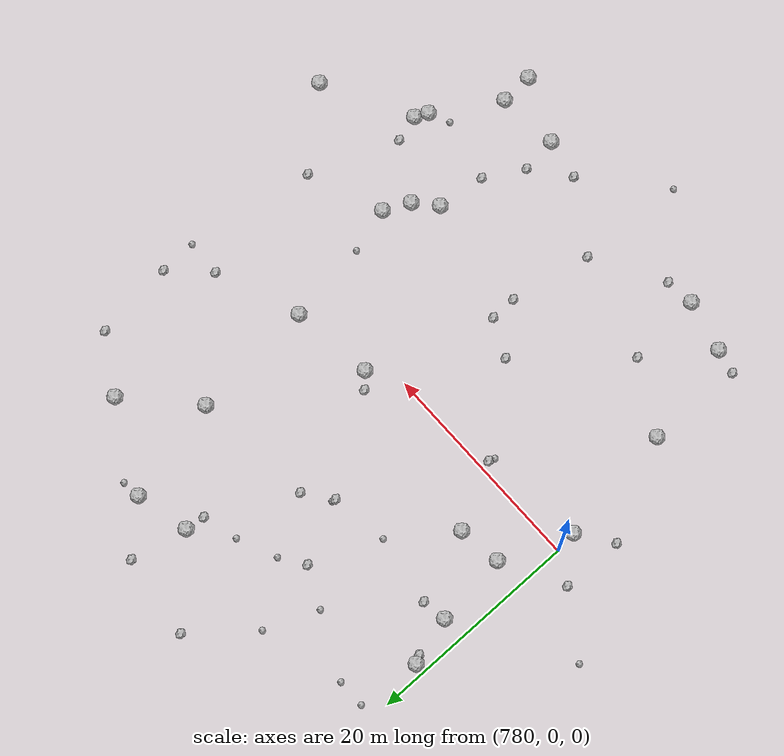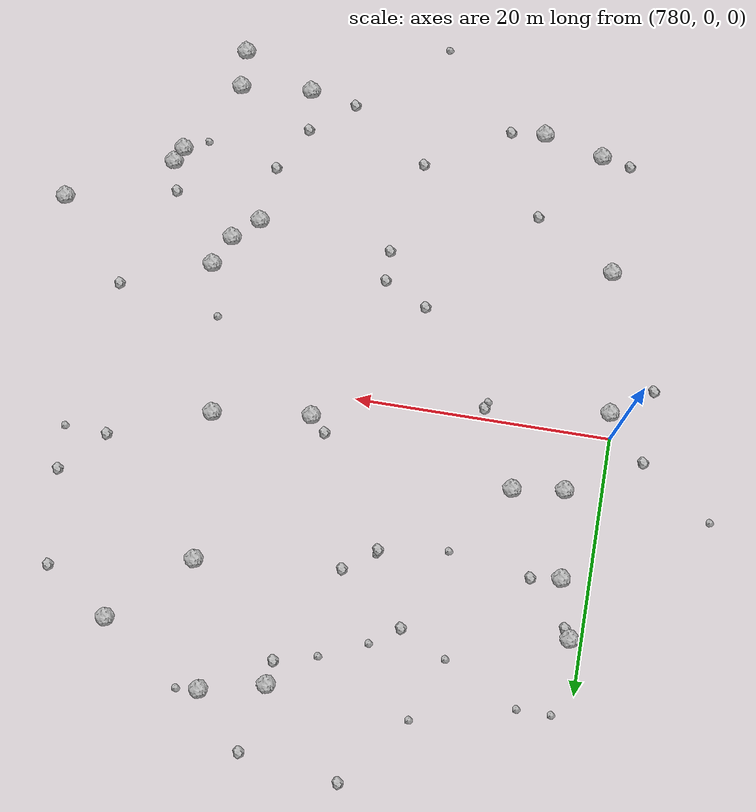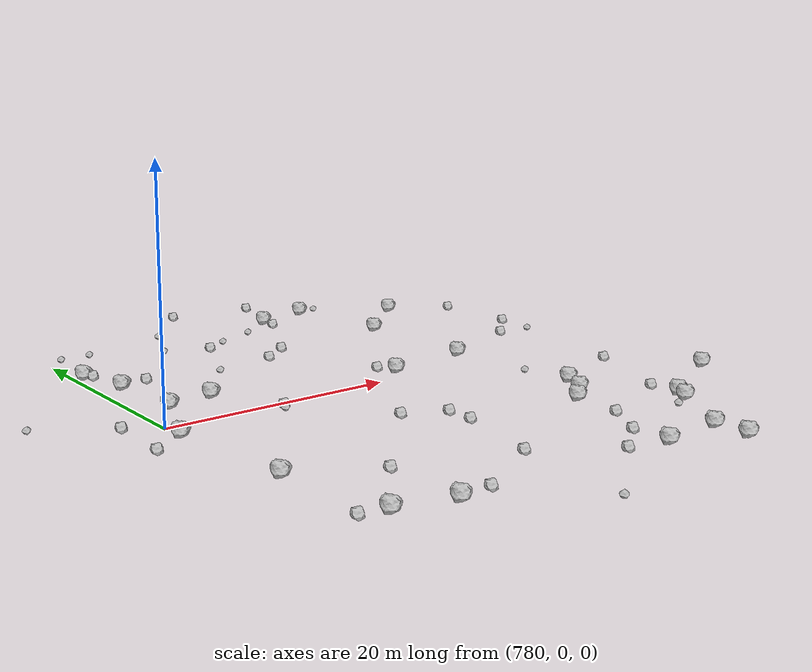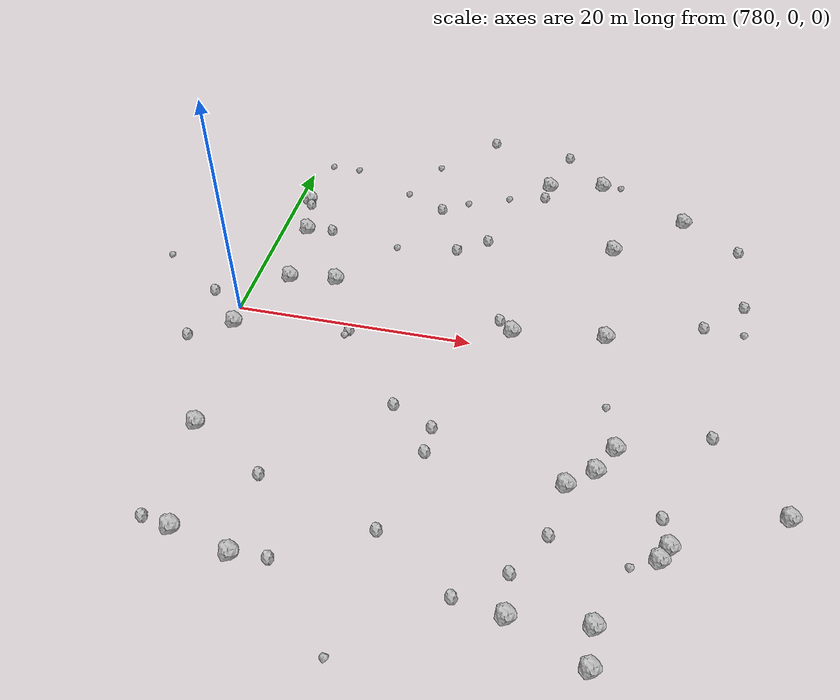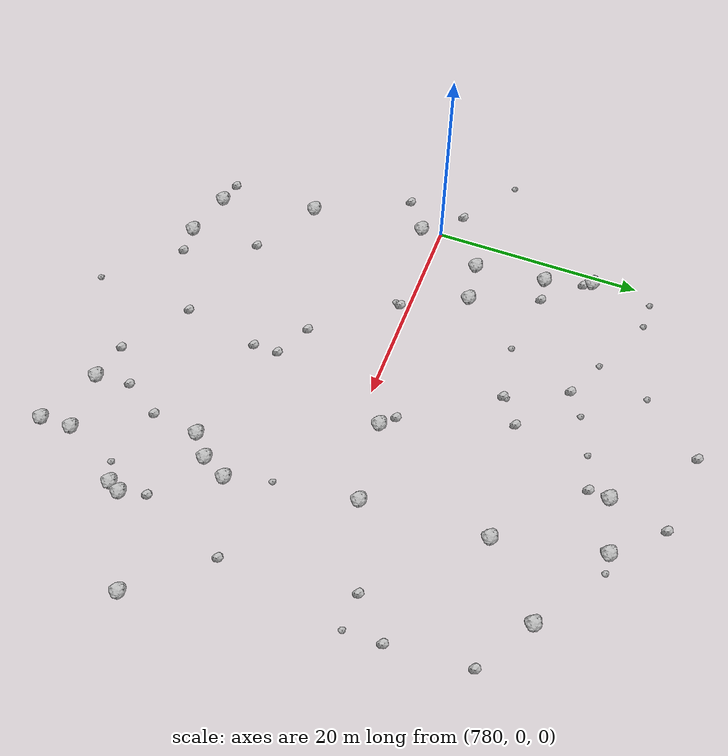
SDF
<sdf version="1.6">
 <world name="default">
  <include><uri>model://sun</uri></include>
  <model name="rock1_20_4">
   <include><uri>model://rock1</uri><pose>825.3857534848519 -12.564048119090135 0.5 0 0 0</pose></include>
  </model>
  <model name="rock1_20_5">
   <include><uri>model://rock1</uri><pose>781.6408195654236 -13.174049176737988 0.5 0 0 0</pose></include>
  </model>
  <model name="rock1_20_6">
   <include><uri>model://rock1</uri><pose>810.8414768581828 2.8228318297638566 0.5 0 0 0</pose></include>
  </model>
  <model name="rock1_20_7">
   <include><uri>model://rock1</uri><pose>816.7947034614918 -17.940993095657163 0.5 0 0 0</pose></include>
  </model>
  <model name="rock1_20_8">
   <include><uri>model://rock1</uri><pose>811.7300768842006 -11.300385141612402 0.5 0 0 0</pose></include>
  </model>
  <model name="rock1_20_9">
   <include><uri>model://rock1</uri><pose>817.3674727896274 -16.754290839830226 0.5 0 0 0</pose></include>
  </model>
  <model name="rock1_20_10">
   <include><uri>model://rock1</uri><pose>810.2320976947436 14.31120904574199 0.5 0 0 0</pose></include>
  </model>
  <model name="rock1_20_11">
   <include><uri>model://rock1</uri><pose>783.7027366522003 -22.47250245665704 0.5 0 0 0</pose></include>
  </model>
  <model name="rock1_20_12">
   <include><uri>model://rock1</uri><pose>780.9968937092101 15.81401538012534 0.5 0 0 0</pose></include>
  </model>
  <model name="rock1_20_13">
   <include><uri>model://rock1</uri><pose>816.1452748306275 19.740601843205788 0.5 0 0 0</pose></include>
  </model>
  <model name="rock1_20_14">
   <include><uri>model://rock1</uri><pose>782.9438260380299 4.549224591086471 0.5 0 0 0</pose></include>
  </model>
  <model name="rock1_20_15">
   <include><uri>model://rock1</uri><pose>808.1580368298538 23.974844044224476 0.5 0 0 0</pose></include>
  </model>
  <model name="rock1_20_16">
   <include><uri>model://rock1</uri><pose>803.1678114363564 22.81056012025038 0.5 0 0 0</pose></include>
  </model>
  <model name="rock1_20_17">
   <include><uri>model://rock1</uri><pose>788.4570722148383 -23.607656680694355 0.5 0 0 0</pose></include>
  </model>
  <model name="rock1_20_18">
   <include><uri>model://rock1</uri><pose>809.7853450283249 -13.016442462823978 0.5 0 0 0</pose></include>
  </model>
  <model name="rock1_20_19">
   <include><uri>model://rock1</uri><pose>780.2984734885839 -1.9957422237433597 0.5 0 0 0</pose></include>
  </model>
  <model name="rock1_20_20">
   <include><uri>model://rock1</uri><pose>803.1857271315389 1.8593950485475972 0.5 0 0 0</pose></include>
  </model>
  <model name="rock1_20_21">
   <include><uri>model://rock1</uri><pose>812.9004734017113 -8.916913649646258 0.5 0 0 0</pose></include>
  </model>
  <model name="rock1_20_22">
   <include><uri>model://rock1</uri><pose>813.2365890967047 -26.75674393508276 0.5 0 0 0</pose></include>
  </model>
  <model name="rock1_20_23">
   <include><uri>model://rock1</uri><pose>807.5184701579071 -24.287383087444155 0.5 0 0 0</pose></include>
  </model>
  <model name="rock1_20_24">
   <include><uri>model://rock1</uri><pose>782.2633324242586 11.347076927932854 0.5 0 0 0</pose></include>
  </model>
  <model name="rock1_20_25">
   <include><uri>model://rock1</uri><pose>786.967049829863 5.083306439545687 0.5 0 0 0</pose></include>
  </model>
  <model name="rock1_20_26">
   <include><uri>model://rock1</uri><pose>813.1333400822359 -23.794828333991262 0.5 0 0 0</pose></include>
  </model>
  <model name="rock2_20_0">
   <include><uri>model://rock2</uri><pose>797.627138945897 -19.609717735144088 0.3 0 0 0</pose></include>
  </model>
  <model name="rock2_20_1">
   <include><uri>model://rock2</uri><pose>791.141079076171 -23.36284441162746 0.3 0 0 0</pose></include>
  </model>
  <model name="rock2_20_2">
   <include><uri>model://rock2</uri><pose>777.2143117950967 1.5069019850674223 0.3 0 0 0</pose></include>
  </model>
  <model name="rock2_20_3">
   <include><uri>model://rock2</uri><pose>802.9283543291166 20.990000756203237 0.3 0 0 0</pose></include>
  </model>
  <model name="rock2_20_4">
   <include><uri>model://rock2</uri><pose>784.5646103369376 11.691569791584541 0.3 0 0 0</pose></include>
  </model>
  <model name="rock2_20_5">
   <include><uri>model://rock2</uri><pose>816.714172978745 -14.364567342210382 0.3 0 0 0</pose></include>
  </model>
  <model name="rock2_20_6">
   <include><uri>model://rock2</uri><pose>819.8189176388537 -6.222065001747286 0.3 0 0 0</pose></include>
  </model>
  <model name="rock2_20_7">
   <include><uri>model://rock2</uri><pose>796.6200247949566 29.200223210882264 0.3 0 0 0</pose></include>
  </model>
  <model name="rock2_20_8">
   <include><uri>model://rock2</uri><pose>804.3476933980286 28.129113086559215 0.3 0 0 0</pose></include>
  </model>
  <model name="rock2_20_9">
   <include><uri>model://rock2</uri><pose>781.3852976358088 -21.999585373073383 0.3 0 0 0</pose></include>
  </model>
  <model name="rock2_20_10">
   <include><uri>model://rock2</uri><pose>799.181262681519 -12.13846220901942 0.3 0 0 0</pose></include>
  </model>
  <model name="rock2_20_11">
   <include><uri>model://rock2</uri><pose>821.1857042807611 16.49735269810219 0.3 0 0 0</pose></include>
  </model>
  <model name="rock2_20_12">
   <include><uri>model://rock2</uri><pose>796.3990118941778 11.40311474708578 0.3 0 0 0</pose></include>
  </model>
  <model name="rock2_20_13">
   <include><uri>model://rock2</uri><pose>807.1617222030414 -21.024481683854667 0.3 0 0 0</pose></include>
  </model>
  <model name="rock2_20_14">
   <include><uri>model://rock2</uri><pose>777.1051770954775 -4.204925749490624 0.3 0 0 0</pose></include>
  </model>
  <model name="rock2_20_15">
   <include><uri>model://rock2</uri><pose>793.7407298169429 17.03944815677061 0.3 0 0 0</pose></include>
  </model>
  <model name="rock2_20_16">
   <include><uri>model://rock2</uri><pose>821.8464066238831 9.074820027000072 0.3 0 0 0</pose></include>
  </model>
  <model name="rock2_20_17">
   <include><uri>model://rock2</uri><pose>801.9346972988783 3.053621103262138 0.3 0 0 0</pose></include>
  </model>
  <model name="rock2_20_18">
   <include><uri>model://rock2</uri><pose>799.1466363253543 -9.723844000381838 0.3 0 0 0</pose></include>
  </model>
  <model name="rock2_20_19">
   <include><uri>model://rock2</uri><pose>781.4091860386718 15.097157760235547 0.3 0 0 0</pose></include>
  </model>
  <model name="rock2_20_20">
   <include><uri>model://rock2</uri><pose>798.8976546771191 13.289490451504918 0.3 0 0 0</pose></include>
  </model>
  <model name="rock2_20_21">
   <include><uri>model://rock2</uri><pose>795.7254134434247 -8.076932324651903 0.3 0 0 0</pose></include>
  </model>
  <model name="rock2_20_22">
   <include><uri>model://rock2</uri><pose>818.6205178464811 5.786197743907621 0.3 0 0 0</pose></include>
  </model>
  <model name="rock2_20_23">
   <include><uri>model://rock2</uri><pose>789.9548798974406 -0.8091645642369691 0.3 0 0 0</pose></include>
  </model>
  <model name="rock2_20_24">
   <include><uri>model://rock2</uri><pose>803.801270808496 -23.63655290234673 0.3 0 0 0</pose></include>
  </model>
  <model name="rock2_20_25">
   <include><uri>model://rock2</uri><pose>788.0028429746429 -16.75067632325315 0.3 0 0 0</pose></include>
  </model>
  <model name="rock2_20_26">
   <include><uri>model://rock2</uri><pose>809.2130570656224 -17.47880655524606 0.3 0 0 0</pose></include>
  </model>
  <model name="rock3_20_0">
   <include><uri>model://rock3</uri><pose>790.0377120570006 18.798349461765632 0.2 0 0 0</pose></include>
  </model>
  <model name="rock3_20_1">
   <include><uri>model://rock3</uri><pose>790.9952593002154 10.610623758902065 0.2 0 0 0</pose></include>
  </model>
  <model name="rock3_20_2">
   <include><uri>model://rock3</uri><pose>789.7212130524632 -1.3991076488690517 0.2 0 0 0</pose></include>
  </model>
  <model name="rock3_20_3">
   <include><uri>model://rock3</uri><pose>771.5067352270872 5.2889122104682755 0.2 0 0 0</pose></include>
  </model>
  <model name="rock3_20_4">
   <include><uri>model://rock3</uri><pose>781.5164040363015 21.674843864246114 0.2 0 0 0</pose></include>
  </model>
  <model name="rock3_20_5">
   <include><uri>model://rock3</uri><pose>814.8810829995758 -18.84985221334409 0.2 0 0 0</pose></include>
  </model>
  <model name="rock3_20_6">
   <include><uri>model://rock3</uri><pose>799.600058723223 20.0876338934225 0.2 0 0 0</pose></include>
  </model>
  <model name="rock3_20_7">
   <include><uri>model://rock3</uri><pose>821.9103332485178 5.605837692027407 0.2 0 0 0</pose></include>
  </model>
  <model name="rock3_20_8">
   <include><uri>model://rock3</uri><pose>784.1610968773356 21.650482237851122 0.2 0 0 0</pose></include>
  </model>
  <model name="rock3_20_9">
   <include><uri>model://rock3</uri><pose>811.720896556912 -4.827767774808546 0.2 0 0 0</pose></include>
  </model>
  <model name="rock3_20_10">
   <include><uri>model://rock3</uri><pose>797.0117237487472 -29.50581157493006 0.2 0 0 0</pose></include>
  </model>
  <model name="rock3_20_11">
   <include><uri>model://rock3</uri><pose>796.4535914237756 11.719394243683503 0.2 0 0 0</pose></include>
  </model>
  <model name="rock3_20_12">
   <include><uri>model://rock3</uri><pose>792.0606717618823 23.73737295942236 0.2 0 0 0</pose></include>
  </model>
  <model name="rock3_20_13">
   <include><uri>model://rock3</uri><pose>795.9463865932644 18.524309429830602 0.2 0 0 0</pose></include>
  </model>
  <model name="rock3_20_14">
   <include><uri>model://rock3</uri><pose>809.8517118157449 24.135070257817368 0.2 0 0 0</pose></include>
  </model>
 </world>
</sdf>
